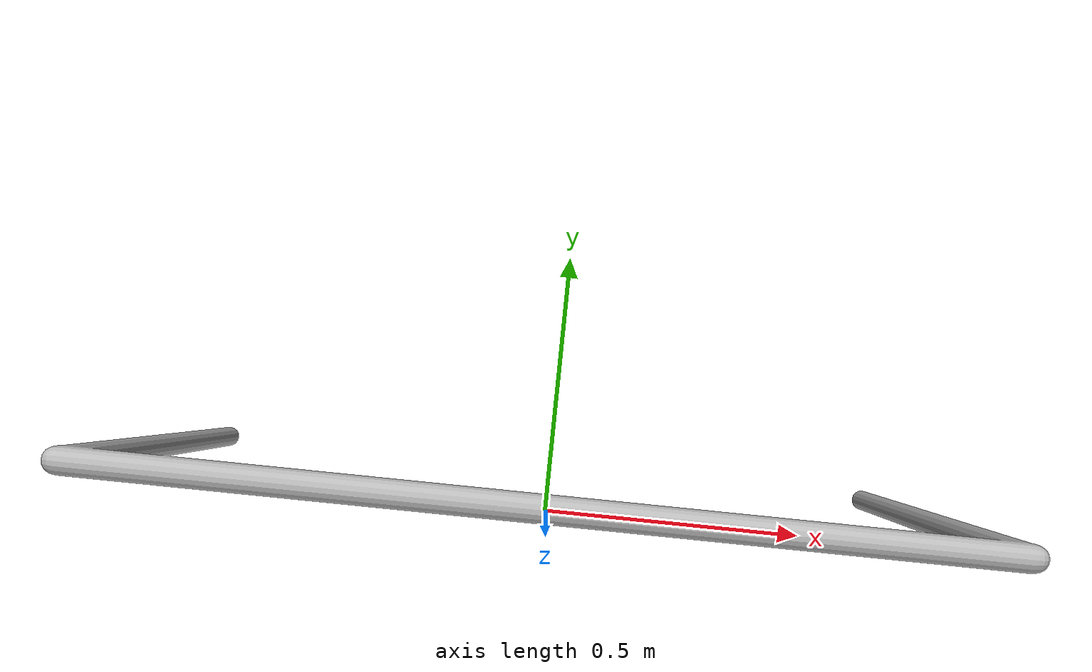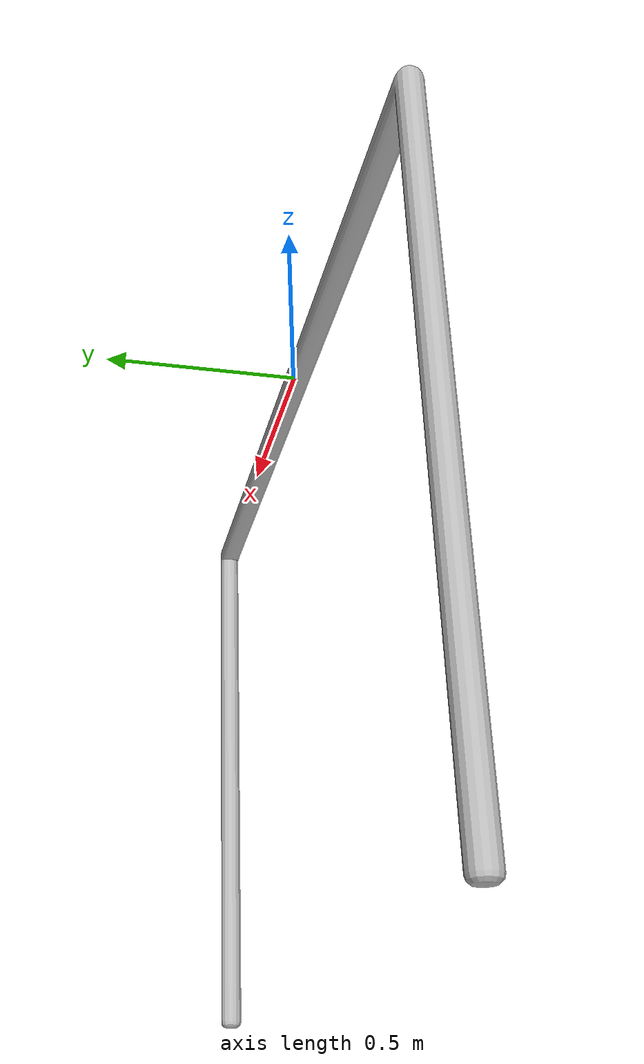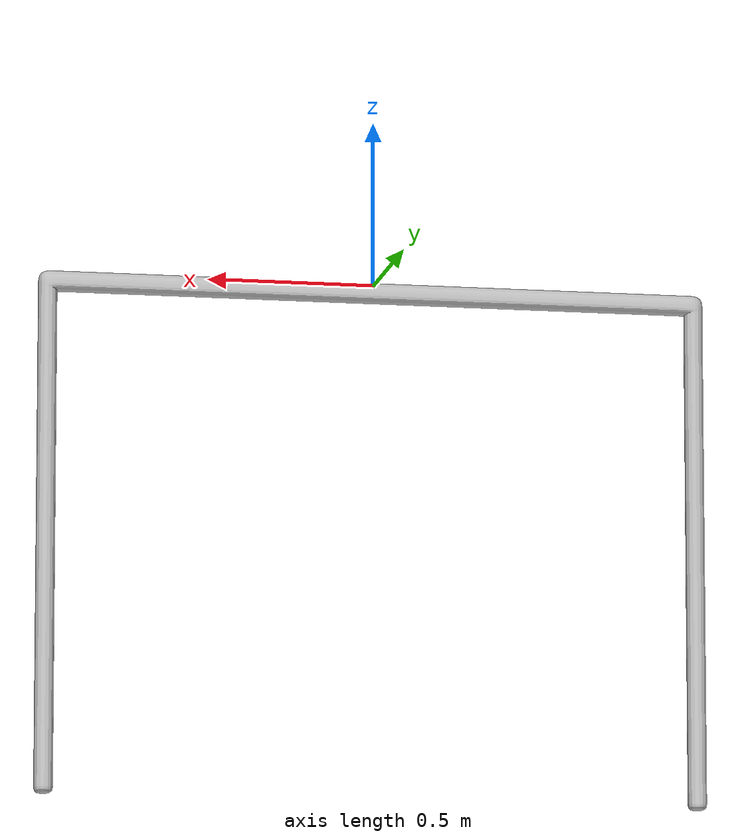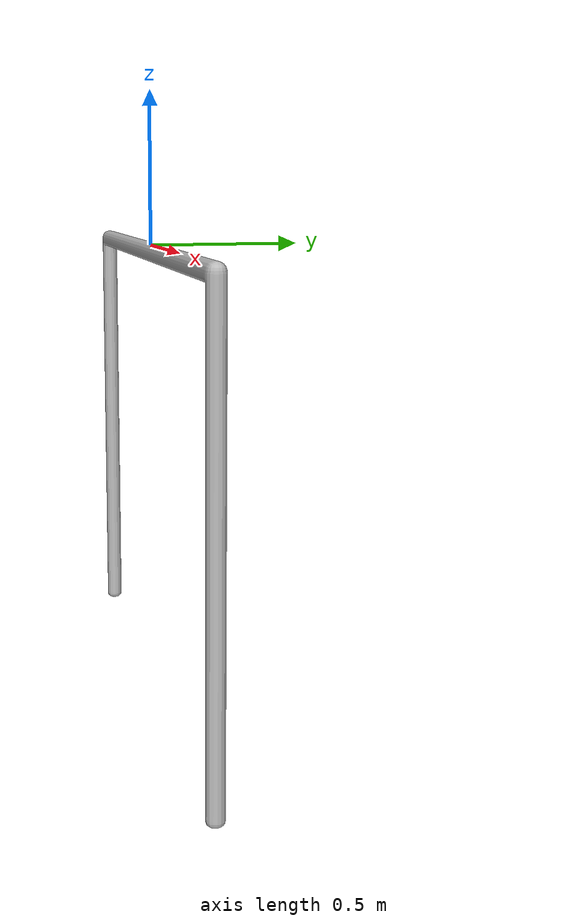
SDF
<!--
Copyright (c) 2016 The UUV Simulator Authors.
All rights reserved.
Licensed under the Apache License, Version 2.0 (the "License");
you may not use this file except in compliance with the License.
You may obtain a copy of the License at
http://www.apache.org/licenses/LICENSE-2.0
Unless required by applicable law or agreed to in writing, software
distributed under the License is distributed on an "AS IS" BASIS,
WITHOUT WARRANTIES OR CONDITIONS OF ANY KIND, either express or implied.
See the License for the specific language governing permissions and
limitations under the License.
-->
<?xml version="1.0" ?>
<sdf version="1.5">
  <model name="gate">
    <static>true</static>
    <link name="link">
      <collision name="gate_geom">
        <pose>0 0 0 0 0 0</pose>
        <geometry>
          <mesh>
            <uri>model://gate/meshes/gate.dae</uri>
          </mesh>
        </geometry>
      </collision>
      <visual name="gate">
        <cast_shadows>true</cast_shadows>
        <pose>0 0 0 0 0 0</pose>
        <geometry>
          <mesh>
            <uri>model://gate/meshes/gate.dae</uri>
          </mesh>
        </geometry>
      </visual>
    </link>
  </model>
</sdf>
